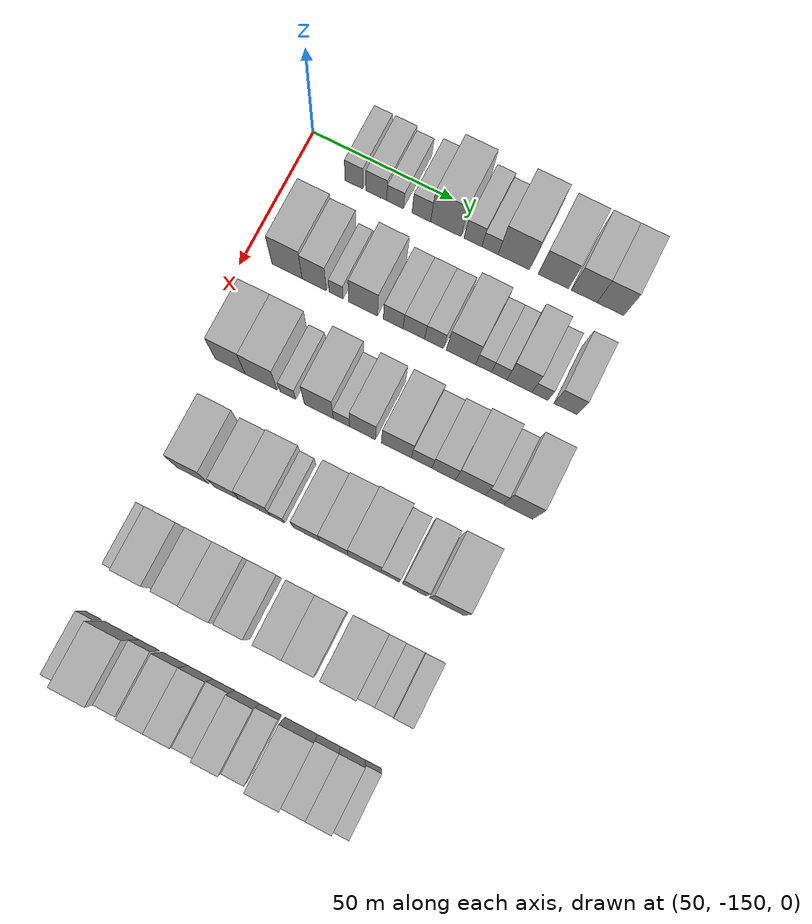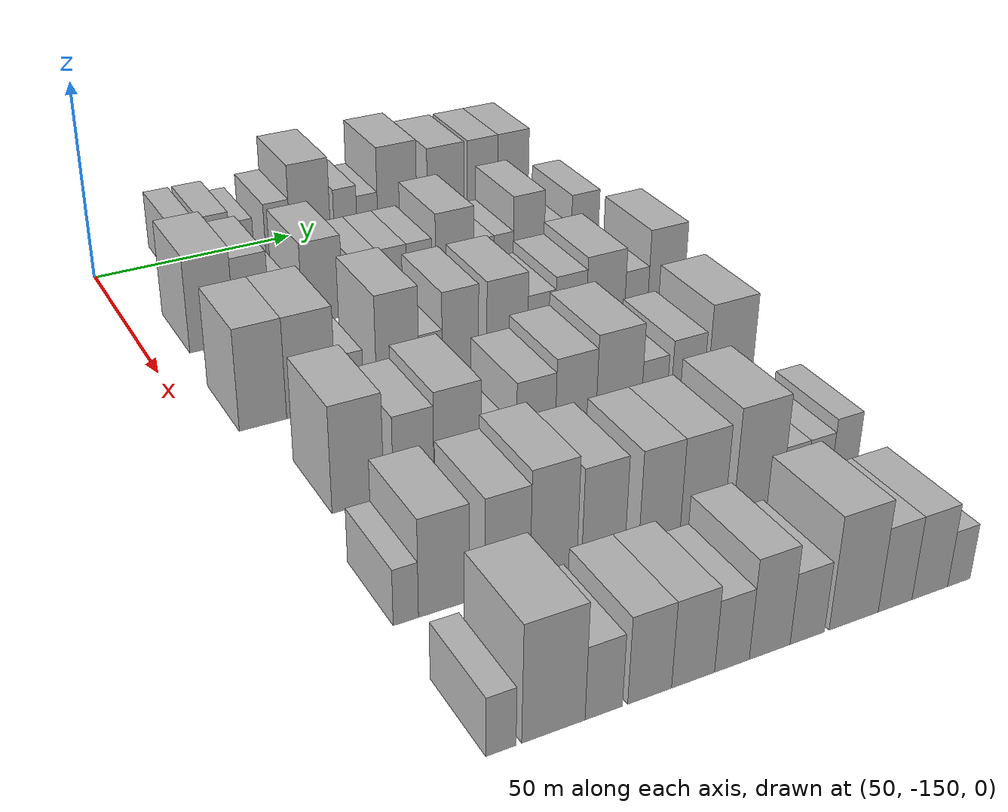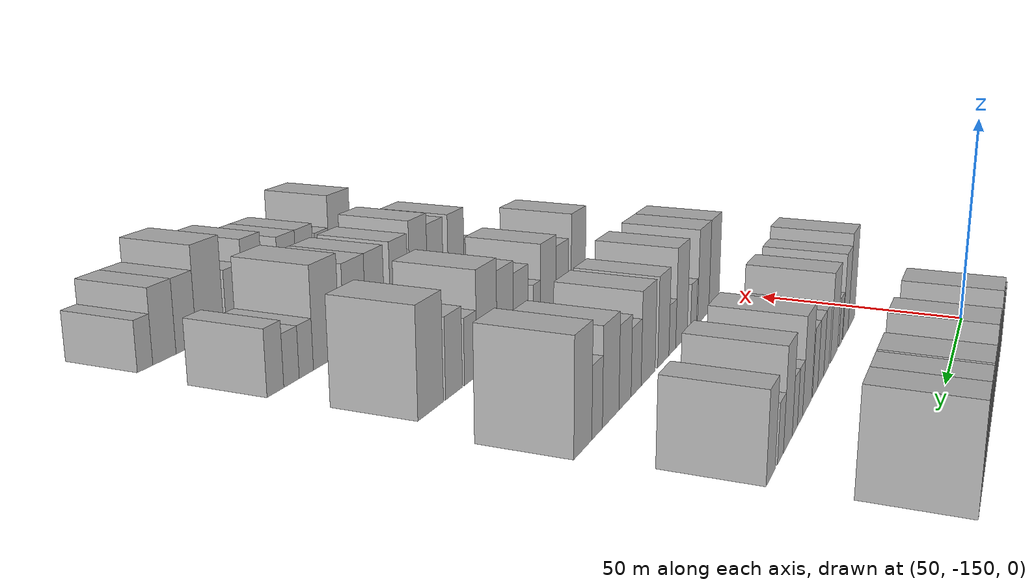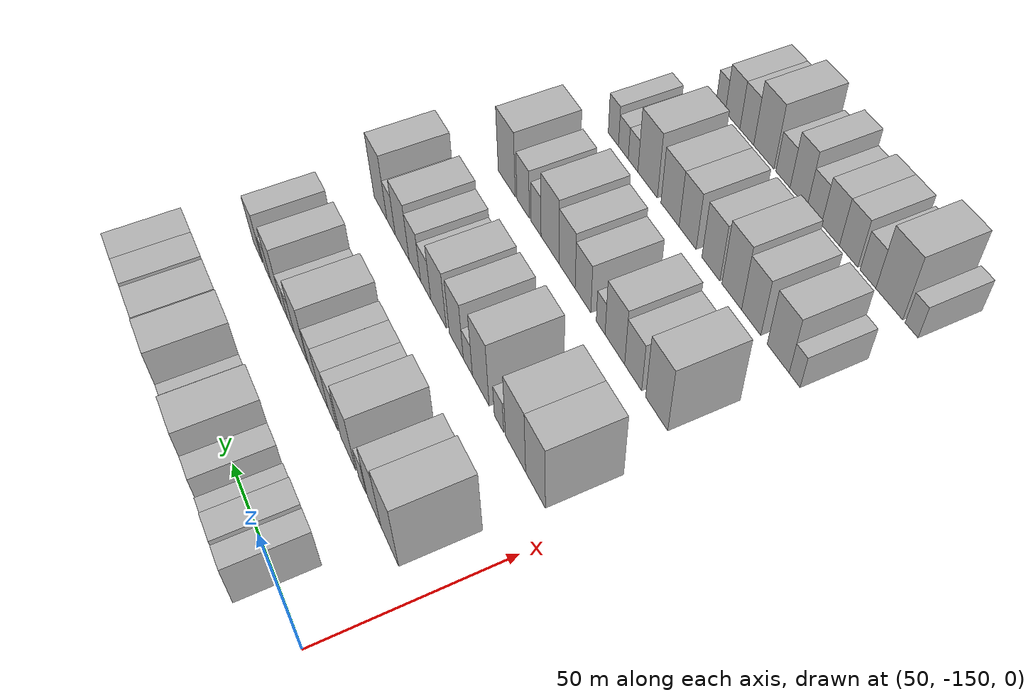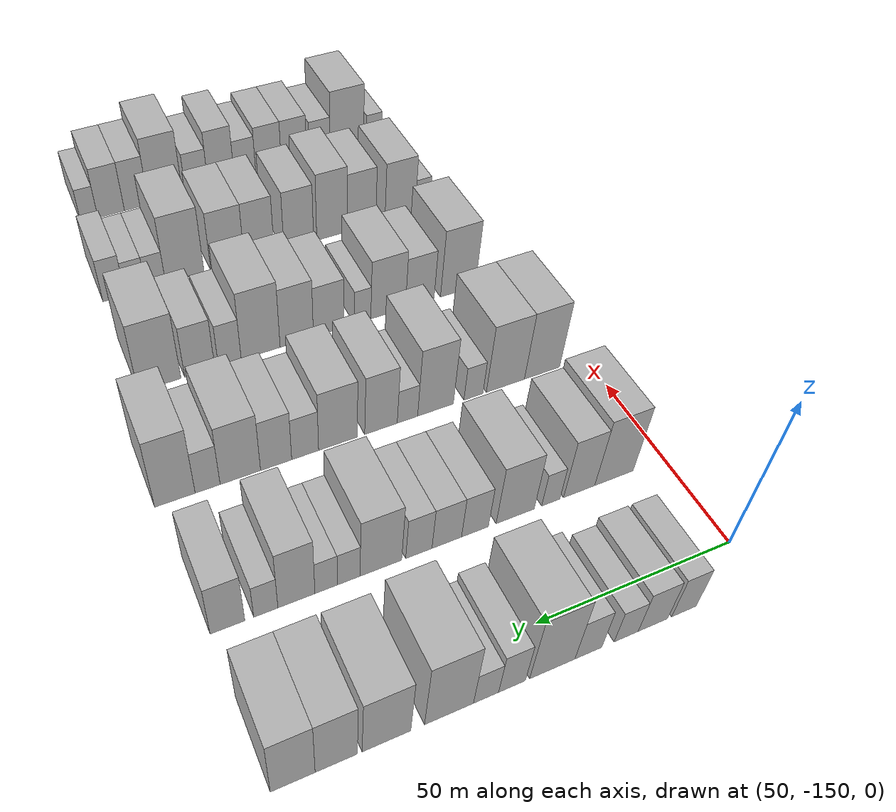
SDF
<sdf version="1.6">
 <world name="default">
  <model name="building_51">
   <static>1</static>
   <pose>50.0000 -130.3508 0 0.000000 0.000000 0.000000</pose>
   <link name="link">
    <pose>0 0 7.50 0 0 0</pose>
    <collision name="collision"><geometry><box><size>20.0000 6.3172 15.0000</size></box></geometry></collision>
    <visual name="visual">
     <cast_shadows>0</cast_shadows>
     <geometry><box><size>20.0000 6.3172 15.0000</size></box></geometry>
     <material>
      <script>
       <uri>model://HANNAS_wall/materials/scripts</uri>
       <uri>model://HANNAS_wall/materials/textures</uri>
       <name>vrc/HANNAS_wall</name>
      </script>
     </material>
    </visual>
   </link>
  </model>
  <model name="building_52">
   <static>1</static>
   <pose>50.0000 -122.4720 0 0.000000 0.000000 0.000000</pose>
   <link name="link">
    <pose>0 0 7.50 0 0 0</pose>
    <collision name="collision"><geometry><box><size>20.0000 7.4404 15.0000</size></box></geometry></collision>
    <visual name="visual">
     <cast_shadows>0</cast_shadows>
     <geometry><box><size>20.0000 7.4404 15.0000</size></box></geometry>
     <material>
      <script>
       <uri>model://HANNAS_wall/materials/scripts</uri>
       <uri>model://HANNAS_wall/materials/textures</uri>
       <name>vrc/HANNAS_wall</name>
      </script>
     </material>
    </visual>
   </link>
  </model>
  <model name="building_53">
   <static>1</static>
   <pose>50.0000 -115.7712 0 0.000000 0.000000 0.000000</pose>
   <link name="link">
    <pose>0 0 6.00 0 0 0</pose>
    <collision name="collision"><geometry><box><size>20.0000 5.9613 12.0000</size></box></geometry></collision>
    <visual name="visual">
     <cast_shadows>0</cast_shadows>
     <geometry><box><size>20.0000 5.9613 12.0000</size></box></geometry>
     <material>
      <script>
       <uri>model://HANNAS_wall/materials/scripts</uri>
       <uri>model://HANNAS_wall/materials/textures</uri>
       <name>vrc/HANNAS_wall</name>
      </script>
     </material>
    </visual>
   </link>
  </model>
  <model name="building_54">
   <static>1</static>
   <pose>50.0000 -106.5245 0 0.000000 0.000000 0.000000</pose>
   <link name="link">
    <pose>0 0 7.50 0 0 0</pose>
    <collision name="collision"><geometry><box><size>20.0000 6.5322 15.0000</size></box></geometry></collision>
    <visual name="visual">
     <cast_shadows>0</cast_shadows>
     <geometry><box><size>20.0000 6.5322 15.0000</size></box></geometry>
     <material>
      <script>
       <uri>model://HANNAS_wall/materials/scripts</uri>
       <uri>model://HANNAS_wall/materials/textures</uri>
       <name>vrc/HANNAS_wall</name>
      </script>
     </material>
    </visual>
   </link>
  </model>
  <model name="building_55">
   <static>1</static>
   <pose>50.0000 -97.8886 0 0.000000 0.000000 0.000000</pose>
   <link name="link">
    <pose>0 0 12.00 0 0 0</pose>
    <collision name="collision"><geometry><box><size>20.0000 10.7394 24.0000</size></box></geometry></collision>
    <visual name="visual">
     <cast_shadows>0</cast_shadows>
     <geometry><box><size>20.0000 10.7394 24.0000</size></box></geometry>
     <material>
      <script>
       <uri>model://HANNAS_wall/materials/scripts</uri>
       <uri>model://HANNAS_wall/materials/textures</uri>
       <name>vrc/HANNAS_wall</name>
      </script>
     </material>
    </visual>
   </link>
  </model>
  <model name="building_56">
   <static>1</static>
   <pose>50.0000 -88.4164 0 0.000000 0.000000 0.000000</pose>
   <link name="link">
    <pose>0 0 7.50 0 0 0</pose>
    <collision name="collision"><geometry><box><size>20.0000 6.2050 15.0000</size></box></geometry></collision>
    <visual name="visual">
     <cast_shadows>0</cast_shadows>
     <geometry><box><size>20.0000 6.2050 15.0000</size></box></geometry>
     <material>
      <script>
       <uri>model://HANNAS_wall/materials/scripts</uri>
       <uri>model://HANNAS_wall/materials/textures</uri>
       <name>vrc/HANNAS_wall</name>
      </script>
     </material>
    </visual>
   </link>
  </model>
  <model name="building_57">
   <static>1</static>
   <pose>50.0000 -82.4625 0 0.000000 0.000000 0.000000</pose>
   <link name="link">
    <pose>0 0 6.00 0 0 0</pose>
    <collision name="collision"><geometry><box><size>20.0000 5.7027 12.0000</size></box></geometry></collision>
    <visual name="visual">
     <cast_shadows>0</cast_shadows>
     <geometry><box><size>20.0000 5.7027 12.0000</size></box></geometry>
     <material>
      <script>
       <uri>model://HANNAS_wall/materials/scripts</uri>
       <uri>model://HANNAS_wall/materials/textures</uri>
       <name>vrc/HANNAS_wall</name>
      </script>
     </material>
    </visual>
   </link>
  </model>
  <model name="building_58">
   <static>1</static>
   <pose>50.0000 -74.1532 0 0.000000 0.000000 0.000000</pose>
   <link name="link">
    <pose>0 0 12.00 0 0 0</pose>
    <collision name="collision"><geometry><box><size>20.0000 10.9160 24.0000</size></box></geometry></collision>
    <visual name="visual">
     <cast_shadows>0</cast_shadows>
     <geometry><box><size>20.0000 10.9160 24.0000</size></box></geometry>
     <material>
      <script>
       <uri>model://HANNAS_wall/materials/scripts</uri>
       <uri>model://HANNAS_wall/materials/textures</uri>
       <name>vrc/HANNAS_wall</name>
      </script>
     </material>
    </visual>
   </link>
  </model>
  <model name="building_59">
   <static>1</static>
   <pose>50.0000 -60.4686 0 0.000000 0.000000 0.000000</pose>
   <link name="link">
    <pose>0 0 10.50 0 0 0</pose>
    <collision name="collision"><geometry><box><size>20.0000 10.4533 21.0000</size></box></geometry></collision>
    <visual name="visual">
     <cast_shadows>0</cast_shadows>
     <geometry><box><size>20.0000 10.4533 21.0000</size></box></geometry>
     <material>
      <script>
       <uri>model://HANNAS_wall/materials/scripts</uri>
       <uri>model://HANNAS_wall/materials/textures</uri>
       <name>vrc/HANNAS_wall</name>
      </script>
     </material>
    </visual>
   </link>
  </model>
  <model name="building_60">
   <static>1</static>
   <pose>50.0000 -49.8352 0 0.000000 0.000000 0.000000</pose>
   <link name="link">
    <pose>0 0 10.50 0 0 0</pose>
    <collision name="collision"><geometry><box><size>20.0000 8.8134 21.0000</size></box></geometry></collision>
    <visual name="visual">
     <cast_shadows>0</cast_shadows>
     <geometry><box><size>20.0000 8.8134 21.0000</size></box></geometry>
     <material>
      <script>
       <uri>model://HANNAS_wall/materials/scripts</uri>
       <uri>model://HANNAS_wall/materials/textures</uri>
       <name>vrc/HANNAS_wall</name>
      </script>
     </material>
    </visual>
   </link>
  </model>
  <model name="building_61">
   <static>1</static>
   <pose>50.0000 -40.8537 0 0.000000 0.000000 0.000000</pose>
   <link name="link">
    <pose>0 0 10.50 0 0 0</pose>
    <collision name="collision"><geometry><box><size>20.0000 9.1495 21.0000</size></box></geometry></collision>
    <visual name="visual">
     <cast_shadows>0</cast_shadows>
     <geometry><box><size>20.0000 9.1495 21.0000</size></box></geometry>
     <material>
      <script>
       <uri>model://HANNAS_wall/materials/scripts</uri>
       <uri>model://HANNAS_wall/materials/textures</uri>
       <name>vrc/HANNAS_wall</name>
      </script>
     </material>
    </visual>
   </link>
  </model>
  <model name="building_176">
   <static>1</static>
   <pose>85.0000 -135.7676 0 0.000000 0.000000 0.000000</pose>
   <link name="link">
    <pose>0 0 12.00 0 0 0</pose>
    <collision name="collision"><geometry><box><size>20.0000 10.6672 24.0000</size></box></geometry></collision>
    <visual name="visual">
     <cast_shadows>0</cast_shadows>
     <geometry><box><size>20.0000 10.6672 24.0000</size></box></geometry>
     <material>
      <script>
       <uri>model://HANNAS_wall/materials/scripts</uri>
       <uri>model://HANNAS_wall/materials/textures</uri>
       <name>vrc/HANNAS_wall</name>
      </script>
     </material>
    </visual>
   </link>
  </model>
  <model name="building_177">
   <static>1</static>
   <pose>85.0000 -126.1915 0 0.000000 0.000000 0.000000</pose>
   <link name="link">
    <pose>0 0 10.50 0 0 0</pose>
    <collision name="collision"><geometry><box><size>20.0000 8.4851 21.0000</size></box></geometry></collision>
    <visual name="visual">
     <cast_shadows>0</cast_shadows>
     <geometry><box><size>20.0000 8.4851 21.0000</size></box></geometry>
     <material>
      <script>
       <uri>model://HANNAS_wall/materials/scripts</uri>
       <uri>model://HANNAS_wall/materials/textures</uri>
       <name>vrc/HANNAS_wall</name>
      </script>
     </material>
    </visual>
   </link>
  </model>
  <model name="building_178">
   <static>1</static>
   <pose>85.0000 -118.5254 0 0.000000 0.000000 0.000000</pose>
   <link name="link">
    <pose>0 0 6.00 0 0 0</pose>
    <collision name="collision"><geometry><box><size>20.0000 4.8470 12.0000</size></box></geometry></collision>
    <visual name="visual">
     <cast_shadows>0</cast_shadows>
     <geometry><box><size>20.0000 4.8470 12.0000</size></box></geometry>
     <material>
      <script>
       <uri>model://HANNAS_wall/materials/scripts</uri>
       <uri>model://HANNAS_wall/materials/textures</uri>
       <name>vrc/HANNAS_wall</name>
      </script>
     </material>
    </visual>
   </link>
  </model>
  <model name="building_179">
   <static>1</static>
   <pose>85.0000 -109.1115 0 0.000000 0.000000 0.000000</pose>
   <link name="link">
    <pose>0 0 10.50 0 0 0</pose>
    <collision name="collision"><geometry><box><size>20.0000 9.9807 21.0000</size></box></geometry></collision>
    <visual name="visual">
     <cast_shadows>0</cast_shadows>
     <geometry><box><size>20.0000 9.9807 21.0000</size></box></geometry>
     <material>
      <script>
       <uri>model://HANNAS_wall/materials/scripts</uri>
       <uri>model://HANNAS_wall/materials/textures</uri>
       <name>vrc/HANNAS_wall</name>
      </script>
     </material>
    </visual>
   </link>
  </model>
  <model name="building_180">
   <static>1</static>
   <pose>85.0000 -98.6884 0 0.000000 0.000000 0.000000</pose>
   <link name="link">
    <pose>0 0 7.50 0 0 0</pose>
    <collision name="collision"><geometry><box><size>20.0000 6.8655 15.0000</size></box></geometry></collision>
    <visual name="visual">
     <cast_shadows>0</cast_shadows>
     <geometry><box><size>20.0000 6.8655 15.0000</size></box></geometry>
     <material>
      <script>
       <uri>model://HANNAS_wall/materials/scripts</uri>
       <uri>model://HANNAS_wall/materials/textures</uri>
       <name>vrc/HANNAS_wall</name>
      </script>
     </material>
    </visual>
   </link>
  </model>
  <model name="building_181">
   <static>1</static>
   <pose>85.0000 -91.5393 0 0.000000 0.000000 0.000000</pose>
   <link name="link">
    <pose>0 0 7.50 0 0 0</pose>
    <collision name="collision"><geometry><box><size>20.0000 7.4326 15.0000</size></box></geometry></collision>
    <visual name="visual">
     <cast_shadows>0</cast_shadows>
     <geometry><box><size>20.0000 7.4326 15.0000</size></box></geometry>
     <material>
      <script>
       <uri>model://HANNAS_wall/materials/scripts</uri>
       <uri>model://HANNAS_wall/materials/textures</uri>
       <name>vrc/HANNAS_wall</name>
      </script>
     </material>
    </visual>
   </link>
  </model>
  <model name="building_182">
   <static>1</static>
   <pose>85.0000 -84.5740 0 0.000000 0.000000 0.000000</pose>
   <link name="link">
    <pose>0 0 7.50 0 0 0</pose>
    <collision name="collision"><geometry><box><size>20.0000 6.4979 15.0000</size></box></geometry></collision>
    <visual name="visual">
     <cast_shadows>0</cast_shadows>
     <geometry><box><size>20.0000 6.4979 15.0000</size></box></geometry>
     <material>
      <script>
       <uri>model://HANNAS_wall/materials/scripts</uri>
       <uri>model://HANNAS_wall/materials/textures</uri>
       <name>vrc/HANNAS_wall</name>
      </script>
     </material>
    </visual>
   </link>
  </model>
  <model name="building_183">
   <static>1</static>
   <pose>85.0000 -75.2834 0 0.000000 0.000000 0.000000</pose>
   <link name="link">
    <pose>0 0 10.50 0 0 0</pose>
    <collision name="collision"><geometry><box><size>20.0000 10.0834 21.0000</size></box></geometry></collision>
    <visual name="visual">
     <cast_shadows>0</cast_shadows>
     <geometry><box><size>20.0000 10.0834 21.0000</size></box></geometry>
     <material>
      <script>
       <uri>model://HANNAS_wall/materials/scripts</uri>
       <uri>model://HANNAS_wall/materials/textures</uri>
       <name>vrc/HANNAS_wall</name>
      </script>
     </material>
    </visual>
   </link>
  </model>
  <model name="building_184">
   <static>1</static>
   <pose>85.0000 -67.5620 0 0.000000 0.000000 0.000000</pose>
   <link name="link">
    <pose>0 0 6.00 0 0 0</pose>
    <collision name="collision"><geometry><box><size>20.0000 5.3594 12.0000</size></box></geometry></collision>
    <visual name="visual">
     <cast_shadows>0</cast_shadows>
     <geometry><box><size>20.0000 5.3594 12.0000</size></box></geometry>
     <material>
      <script>
       <uri>model://HANNAS_wall/materials/scripts</uri>
       <uri>model://HANNAS_wall/materials/textures</uri>
       <name>vrc/HANNAS_wall</name>
      </script>
     </material>
    </visual>
   </link>
  </model>
  <model name="building_185">
   <static>1</static>
   <pose>85.0000 -62.2401 0 0.000000 0.000000 0.000000</pose>
   <link name="link">
    <pose>0 0 6.00 0 0 0</pose>
    <collision name="collision"><geometry><box><size>20.0000 5.2845 12.0000</size></box></geometry></collision>
    <visual name="visual">
     <cast_shadows>0</cast_shadows>
     <geometry><box><size>20.0000 5.2845 12.0000</size></box></geometry>
     <material>
      <script>
       <uri>model://HANNAS_wall/materials/scripts</uri>
       <uri>model://HANNAS_wall/materials/textures</uri>
       <name>vrc/HANNAS_wall</name>
      </script>
     </material>
    </visual>
   </link>
  </model>
  <model name="building_186">
   <static>1</static>
   <pose>85.0000 -55.3357 0 0.000000 0.000000 0.000000</pose>
   <link name="link">
    <pose>0 0 10.50 0 0 0</pose>
    <collision name="collision"><geometry><box><size>20.0000 8.5244 21.0000</size></box></geometry></collision>
    <visual name="visual">
     <cast_shadows>0</cast_shadows>
     <geometry><box><size>20.0000 8.5244 21.0000</size></box></geometry>
     <material>
      <script>
       <uri>model://HANNAS_wall/materials/scripts</uri>
       <uri>model://HANNAS_wall/materials/textures</uri>
       <name>vrc/HANNAS_wall</name>
      </script>
     </material>
    </visual>
   </link>
  </model>
  <model name="building_187">
   <static>1</static>
   <pose>85.0000 -48.3284 0 0.000000 0.000000 0.000000</pose>
   <link name="link">
    <pose>0 0 6.00 0 0 0</pose>
    <collision name="collision"><geometry><box><size>20.0000 5.4902 12.0000</size></box></geometry></collision>
    <visual name="visual">
     <cast_shadows>0</cast_shadows>
     <geometry><box><size>20.0000 5.4902 12.0000</size></box></geometry>
     <material>
      <script>
       <uri>model://HANNAS_wall/materials/scripts</uri>
       <uri>model://HANNAS_wall/materials/textures</uri>
       <name>vrc/HANNAS_wall</name>
      </script>
     </material>
    </visual>
   </link>
  </model>
  <model name="building_188">
   <static>1</static>
   <pose>85.0000 -39.7188 0 0.000000 0.000000 0.000000</pose>
   <link name="link">
    <pose>0 0 9.00 0 0 0</pose>
    <collision name="collision"><geometry><box><size>20.0000 7.7289 18.0000</size></box></geometry></collision>
    <visual name="visual">
     <cast_shadows>0</cast_shadows>
     <geometry><box><size>20.0000 7.7289 18.0000</size></box></geometry>
     <material>
      <script>
       <uri>model://HANNAS_wall/materials/scripts</uri>
       <uri>model://HANNAS_wall/materials/textures</uri>
       <name>vrc/HANNAS_wall</name>
      </script>
     </material>
    </visual>
   </link>
  </model>
  <model name="building_296">
   <static>1</static>
   <pose>120.0000 -136.9587 0 0.000000 0.000000 0.000000</pose>
   <link name="link">
    <pose>0 0 12.00 0 0 0</pose>
    <collision name="collision"><geometry><box><size>20.0000 10.4155 24.0000</size></box></geometry></collision>
    <visual name="visual">
     <cast_shadows>0</cast_shadows>
     <geometry><box><size>20.0000 10.4155 24.0000</size></box></geometry>
     <material>
      <script>
       <uri>model://HANNAS_wall/materials/scripts</uri>
       <uri>model://HANNAS_wall/materials/textures</uri>
       <name>vrc/HANNAS_wall</name>
      </script>
     </material>
    </visual>
   </link>
  </model>
  <model name="building_297">
   <static>1</static>
   <pose>120.0000 -126.2080 0 0.000000 0.000000 0.000000</pose>
   <link name="link">
    <pose>0 0 12.00 0 0 0</pose>
    <collision name="collision"><geometry><box><size>20.0000 11.0860 24.0000</size></box></geometry></collision>
    <visual name="visual">
     <cast_shadows>0</cast_shadows>
     <geometry><box><size>20.0000 11.0860 24.0000</size></box></geometry>
     <material>
      <script>
       <uri>model://HANNAS_wall/materials/scripts</uri>
       <uri>model://HANNAS_wall/materials/textures</uri>
       <name>vrc/HANNAS_wall</name>
      </script>
     </material>
    </visual>
   </link>
  </model>
  <model name="building_298">
   <static>1</static>
   <pose>120.0000 -116.9693 0 0.000000 0.000000 0.000000</pose>
   <link name="link">
    <pose>0 0 6.00 0 0 0</pose>
    <collision name="collision"><geometry><box><size>20.0000 5.3913 12.0000</size></box></geometry></collision>
    <visual name="visual">
     <cast_shadows>0</cast_shadows>
     <geometry><box><size>20.0000 5.3913 12.0000</size></box></geometry>
     <material>
      <script>
       <uri>model://HANNAS_wall/materials/scripts</uri>
       <uri>model://HANNAS_wall/materials/textures</uri>
       <name>vrc/HANNAS_wall</name>
      </script>
     </material>
    </visual>
   </link>
  </model>
  <model name="building_299">
   <static>1</static>
   <pose>120.0000 -106.2998 0 0.000000 0.000000 0.000000</pose>
   <link name="link">
    <pose>0 0 12.00 0 0 0</pose>
    <collision name="collision"><geometry><box><size>20.0000 9.9476 24.0000</size></box></geometry></collision>
    <visual name="visual">
     <cast_shadows>0</cast_shadows>
     <geometry><box><size>20.0000 9.9476 24.0000</size></box></geometry>
     <material>
      <script>
       <uri>model://HANNAS_wall/materials/scripts</uri>
       <uri>model://HANNAS_wall/materials/textures</uri>
       <name>vrc/HANNAS_wall</name>
      </script>
     </material>
    </visual>
   </link>
  </model>
  <model name="building_300">
   <static>1</static>
   <pose>120.0000 -98.5331 0 0.000000 0.000000 0.000000</pose>
   <link name="link">
    <pose>0 0 6.00 0 0 0</pose>
    <collision name="collision"><geometry><box><size>20.0000 5.5858 12.0000</size></box></geometry></collision>
    <visual name="visual">
     <cast_shadows>0</cast_shadows>
     <geometry><box><size>20.0000 5.5858 12.0000</size></box></geometry>
     <material>
      <script>
       <uri>model://HANNAS_wall/materials/scripts</uri>
       <uri>model://HANNAS_wall/materials/textures</uri>
       <name>vrc/HANNAS_wall</name>
      </script>
     </material>
    </visual>
   </link>
  </model>
  <model name="building_301">
   <static>1</static>
   <pose>120.0000 -91.3434 0 0.000000 0.000000 0.000000</pose>
   <link name="link">
    <pose>0 0 10.50 0 0 0</pose>
    <collision name="collision"><geometry><box><size>20.0000 8.7936 21.0000</size></box></geometry></collision>
    <visual name="visual">
     <cast_shadows>0</cast_shadows>
     <geometry><box><size>20.0000 8.7936 21.0000</size></box></geometry>
     <material>
      <script>
       <uri>model://HANNAS_wall/materials/scripts</uri>
       <uri>model://HANNAS_wall/materials/textures</uri>
       <name>vrc/HANNAS_wall</name>
      </script>
     </material>
    </visual>
   </link>
  </model>
  <model name="building_302">
   <static>1</static>
   <pose>120.0000 -79.8676 0 0.000000 0.000000 0.000000</pose>
   <link name="link">
    <pose>0 0 10.50 0 0 0</pose>
    <collision name="collision"><geometry><box><size>20.0000 10.1580 21.0000</size></box></geometry></collision>
    <visual name="visual">
     <cast_shadows>0</cast_shadows>
     <geometry><box><size>20.0000 10.1580 21.0000</size></box></geometry>
     <material>
      <script>
       <uri>model://HANNAS_wall/materials/scripts</uri>
       <uri>model://HANNAS_wall/materials/textures</uri>
       <name>vrc/HANNAS_wall</name>
      </script>
     </material>
    </visual>
   </link>
  </model>
  <model name="building_303">
   <static>1</static>
   <pose>120.0000 -71.3106 0 0.000000 0.000000 0.000000</pose>
   <link name="link">
    <pose>0 0 7.50 0 0 0</pose>
    <collision name="collision"><geometry><box><size>20.0000 6.9560 15.0000</size></box></geometry></collision>
    <visual name="visual">
     <cast_shadows>0</cast_shadows>
     <geometry><box><size>20.0000 6.9560 15.0000</size></box></geometry>
     <material>
      <script>
       <uri>model://HANNAS_wall/materials/scripts</uri>
       <uri>model://HANNAS_wall/materials/textures</uri>
       <name>vrc/HANNAS_wall</name>
      </script>
     </material>
    </visual>
   </link>
  </model>
  <model name="building_304">
   <static>1</static>
   <pose>120.0000 -63.8714 0 0.000000 0.000000 0.000000</pose>
   <link name="link">
    <pose>0 0 9.00 0 0 0</pose>
    <collision name="collision"><geometry><box><size>20.0000 7.9224 18.0000</size></box></geometry></collision>
    <visual name="visual">
     <cast_shadows>0</cast_shadows>
     <geometry><box><size>20.0000 7.9224 18.0000</size></box></geometry>
     <material>
      <script>
       <uri>model://HANNAS_wall/materials/scripts</uri>
       <uri>model://HANNAS_wall/materials/textures</uri>
       <name>vrc/HANNAS_wall</name>
      </script>
     </material>
    </visual>
   </link>
  </model>
  <model name="building_305">
   <static>1</static>
   <pose>120.0000 -54.8686 0 0.000000 0.000000 0.000000</pose>
   <link name="link">
    <pose>0 0 10.50 0 0 0</pose>
    <collision name="collision"><geometry><box><size>20.0000 10.0833 21.0000</size></box></geometry></collision>
    <visual name="visual">
     <cast_shadows>0</cast_shadows>
     <geometry><box><size>20.0000 10.0833 21.0000</size></box></geometry>
     <material>
      <script>
       <uri>model://HANNAS_wall/materials/scripts</uri>
       <uri>model://HANNAS_wall/materials/textures</uri>
       <name>vrc/HANNAS_wall</name>
      </script>
     </material>
    </visual>
   </link>
  </model>
  <model name="building_306">
   <static>1</static>
   <pose>120.0000 -46.7662 0 0.000000 0.000000 0.000000</pose>
   <link name="link">
    <pose>0 0 7.50 0 0 0</pose>
    <collision name="collision"><geometry><box><size>20.0000 6.1215 15.0000</size></box></geometry></collision>
    <visual name="visual">
     <cast_shadows>0</cast_shadows>
     <geometry><box><size>20.0000 6.1215 15.0000</size></box></geometry>
     <material>
      <script>
       <uri>model://HANNAS_wall/materials/scripts</uri>
       <uri>model://HANNAS_wall/materials/textures</uri>
       <name>vrc/HANNAS_wall</name>
      </script>
     </material>
    </visual>
   </link>
  </model>
  <model name="building_307">
   <static>1</static>
   <pose>120.0000 -38.8166 0 0.000000 0.000000 0.000000</pose>
   <link name="link">
    <pose>0 0 12.00 0 0 0</pose>
    <collision name="collision"><geometry><box><size>20.0000 9.7776 24.0000</size></box></geometry></collision>
    <visual name="visual">
     <cast_shadows>0</cast_shadows>
     <geometry><box><size>20.0000 9.7776 24.0000</size></box></geometry>
     <material>
      <script>
       <uri>model://HANNAS_wall/materials/scripts</uri>
       <uri>model://HANNAS_wall/materials/textures</uri>
       <name>vrc/HANNAS_wall</name>
      </script>
     </material>
    </visual>
   </link>
  </model>
  <model name="building_426">
   <static>1</static>
   <pose>155.0000 -130.8153 0 0.000000 0.000000 0.000000</pose>
   <link name="link">
    <pose>0 0 12.00 0 0 0</pose>
    <collision name="collision"><geometry><box><size>20.0000 10.8193 24.0000</size></box></geometry></collision>
    <visual name="visual">
     <cast_shadows>0</cast_shadows>
     <geometry><box><size>20.0000 10.8193 24.0000</size></box></geometry>
     <material>
      <script>
       <uri>model://HANNAS_wall/materials/scripts</uri>
       <uri>model://HANNAS_wall/materials/textures</uri>
       <name>vrc/HANNAS_wall</name>
      </script>
     </material>
    </visual>
   </link>
  </model>
  <model name="building_427">
   <static>1</static>
   <pose>155.0000 -119.0534 0 0.000000 0.000000 0.000000</pose>
   <link name="link">
    <pose>0 0 9.00 0 0 0</pose>
    <collision name="collision"><geometry><box><size>20.0000 8.7045 18.0000</size></box></geometry></collision>
    <visual name="visual">
     <cast_shadows>0</cast_shadows>
     <geometry><box><size>20.0000 8.7045 18.0000</size></box></geometry>
     <material>
      <script>
       <uri>model://HANNAS_wall/materials/scripts</uri>
       <uri>model://HANNAS_wall/materials/textures</uri>
       <name>vrc/HANNAS_wall</name>
      </script>
     </material>
    </visual>
   </link>
  </model>
  <model name="building_428">
   <static>1</static>
   <pose>155.0000 -109.5148 0 0.000000 0.000000 0.000000</pose>
   <link name="link">
    <pose>0 0 10.50 0 0 0</pose>
    <collision name="collision"><geometry><box><size>20.0000 10.3727 21.0000</size></box></geometry></collision>
    <visual name="visual">
     <cast_shadows>0</cast_shadows>
     <geometry><box><size>20.0000 10.3727 21.0000</size></box></geometry>
     <material>
      <script>
       <uri>model://HANNAS_wall/materials/scripts</uri>
       <uri>model://HANNAS_wall/materials/textures</uri>
       <name>vrc/HANNAS_wall</name>
      </script>
     </material>
    </visual>
   </link>
  </model>
  <model name="building_429">
   <static>1</static>
   <pose>155.0000 -101.9180 0 0.000000 0.000000 0.000000</pose>
   <link name="link">
    <pose>0 0 6.00 0 0 0</pose>
    <collision name="collision"><geometry><box><size>20.0000 4.8208 12.0000</size></box></geometry></collision>
    <visual name="visual">
     <cast_shadows>0</cast_shadows>
     <geometry><box><size>20.0000 4.8208 12.0000</size></box></geometry>
     <material>
      <script>
       <uri>model://HANNAS_wall/materials/scripts</uri>
       <uri>model://HANNAS_wall/materials/textures</uri>
       <name>vrc/HANNAS_wall</name>
      </script>
     </material>
    </visual>
   </link>
  </model>
  <model name="building_430">
   <static>1</static>
   <pose>155.0000 -92.0634 0 0.000000 0.000000 0.000000</pose>
   <link name="link">
    <pose>0 0 9.00 0 0 0</pose>
    <collision name="collision"><geometry><box><size>20.0000 8.8884 18.0000</size></box></geometry></collision>
    <visual name="visual">
     <cast_shadows>0</cast_shadows>
     <geometry><box><size>20.0000 8.8884 18.0000</size></box></geometry>
     <material>
      <script>
       <uri>model://HANNAS_wall/materials/scripts</uri>
       <uri>model://HANNAS_wall/materials/textures</uri>
       <name>vrc/HANNAS_wall</name>
      </script>
     </material>
    </visual>
   </link>
  </model>
  <model name="building_431">
   <static>1</static>
   <pose>155.0000 -82.8939 0 0.000000 0.000000 0.000000</pose>
   <link name="link">
    <pose>0 0 10.50 0 0 0</pose>
    <collision name="collision"><geometry><box><size>20.0000 9.4506 21.0000</size></box></geometry></collision>
    <visual name="visual">
     <cast_shadows>0</cast_shadows>
     <geometry><box><size>20.0000 9.4506 21.0000</size></box></geometry>
     <material>
      <script>
       <uri>model://HANNAS_wall/materials/scripts</uri>
       <uri>model://HANNAS_wall/materials/textures</uri>
       <name>vrc/HANNAS_wall</name>
      </script>
     </material>
    </visual>
   </link>
  </model>
  <model name="building_432">
   <static>1</static>
   <pose>155.0000 -72.7518 0 0.000000 0.000000 0.000000</pose>
   <link name="link">
    <pose>0 0 12.00 0 0 0</pose>
    <collision name="collision"><geometry><box><size>20.0000 10.8337 24.0000</size></box></geometry></collision>
    <visual name="visual">
     <cast_shadows>0</cast_shadows>
     <geometry><box><size>20.0000 10.8337 24.0000</size></box></geometry>
     <material>
      <script>
       <uri>model://HANNAS_wall/materials/scripts</uri>
       <uri>model://HANNAS_wall/materials/textures</uri>
       <name>vrc/HANNAS_wall</name>
      </script>
     </material>
    </visual>
   </link>
  </model>
  <model name="building_433">
   <static>1</static>
   <pose>155.0000 -64.2150 0 0.000000 0.000000 0.000000</pose>
   <link name="link">
    <pose>0 0 7.50 0 0 0</pose>
    <collision name="collision"><geometry><box><size>20.0000 6.2399 15.0000</size></box></geometry></collision>
    <visual name="visual">
     <cast_shadows>0</cast_shadows>
     <geometry><box><size>20.0000 6.2399 15.0000</size></box></geometry>
     <material>
      <script>
       <uri>model://HANNAS_wall/materials/scripts</uri>
       <uri>model://HANNAS_wall/materials/textures</uri>
       <name>vrc/HANNAS_wall</name>
      </script>
     </material>
    </visual>
   </link>
  </model>
  <model name="building_434">
   <static>1</static>
   <pose>155.0000 -56.0579 0 0.000000 0.000000 0.000000</pose>
   <link name="link">
    <pose>0 0 9.00 0 0 0</pose>
    <collision name="collision"><geometry><box><size>20.0000 8.0742 18.0000</size></box></geometry></collision>
    <visual name="visual">
     <cast_shadows>0</cast_shadows>
     <geometry><box><size>20.0000 8.0742 18.0000</size></box></geometry>
     <material>
      <script>
       <uri>model://HANNAS_wall/materials/scripts</uri>
       <uri>model://HANNAS_wall/materials/textures</uri>
       <name>vrc/HANNAS_wall</name>
      </script>
     </material>
    </visual>
   </link>
  </model>
  <model name="building_435">
   <static>1</static>
   <pose>155.0000 -45.3589 0 0.000000 0.000000 0.000000</pose>
   <link name="link">
    <pose>0 0 12.00 0 0 0</pose>
    <collision name="collision"><geometry><box><size>20.0000 11.3237 24.0000</size></box></geometry></collision>
    <visual name="visual">
     <cast_shadows>0</cast_shadows>
     <geometry><box><size>20.0000 11.3237 24.0000</size></box></geometry>
     <material>
      <script>
       <uri>model://HANNAS_wall/materials/scripts</uri>
       <uri>model://HANNAS_wall/materials/textures</uri>
       <name>vrc/HANNAS_wall</name>
      </script>
     </material>
    </visual>
   </link>
  </model>
  <model name="building_552">
   <static>1</static>
   <pose>190.0000 -137.0495 0 0.000000 0.000000 0.000000</pose>
   <link name="link">
    <pose>0 0 6.00 0 0 0</pose>
    <collision name="collision"><geometry><box><size>20.0000 4.8321 12.0000</size></box></geometry></collision>
    <visual name="visual">
     <cast_shadows>0</cast_shadows>
     <geometry><box><size>20.0000 4.8321 12.0000</size></box></geometry>
     <material>
      <script>
       <uri>model://HANNAS_wall/materials/scripts</uri>
       <uri>model://HANNAS_wall/materials/textures</uri>
       <name>vrc/HANNAS_wall</name>
      </script>
     </material>
    </visual>
   </link>
  </model>
  <model name="building_553">
   <static>1</static>
   <pose>190.0000 -129.6587 0 0.000000 0.000000 0.000000</pose>
   <link name="link">
    <pose>0 0 10.50 0 0 0</pose>
    <collision name="collision"><geometry><box><size>20.0000 9.9494 21.0000</size></box></geometry></collision>
    <visual name="visual">
     <cast_shadows>0</cast_shadows>
     <geometry><box><size>20.0000 9.9494 21.0000</size></box></geometry>
     <material>
      <script>
       <uri>model://HANNAS_wall/materials/scripts</uri>
       <uri>model://HANNAS_wall/materials/textures</uri>
       <name>vrc/HANNAS_wall</name>
      </script>
     </material>
    </visual>
   </link>
  </model>
  <model name="building_554">
   <static>1</static>
   <pose>190.0000 -117.1077 0 0.000000 0.000000 0.000000</pose>
   <link name="link">
    <pose>0 0 10.50 0 0 0</pose>
    <collision name="collision"><geometry><box><size>20.0000 9.1526 21.0000</size></box></geometry></collision>
    <visual name="visual">
     <cast_shadows>0</cast_shadows>
     <geometry><box><size>20.0000 9.1526 21.0000</size></box></geometry>
     <material>
      <script>
       <uri>model://HANNAS_wall/materials/scripts</uri>
       <uri>model://HANNAS_wall/materials/textures</uri>
       <name>vrc/HANNAS_wall</name>
      </script>
     </material>
    </visual>
   </link>
  </model>
  <model name="building_555">
   <static>1</static>
   <pose>190.0000 -107.6897 0 0.000000 0.000000 0.000000</pose>
   <link name="link">
    <pose>0 0 12.00 0 0 0</pose>
    <collision name="collision"><geometry><box><size>20.0000 9.6835 24.0000</size></box></geometry></collision>
    <visual name="visual">
     <cast_shadows>0</cast_shadows>
     <geometry><box><size>20.0000 9.6835 24.0000</size></box></geometry>
     <material>
      <script>
       <uri>model://HANNAS_wall/materials/scripts</uri>
       <uri>model://HANNAS_wall/materials/textures</uri>
       <name>vrc/HANNAS_wall</name>
      </script>
     </material>
    </visual>
   </link>
  </model>
  <model name="building_556">
   <static>1</static>
   <pose>190.0000 -97.2394 0 0.000000 0.000000 0.000000</pose>
   <link name="link">
    <pose>0 0 10.50 0 0 0</pose>
    <collision name="collision"><geometry><box><size>20.0000 9.2171 21.0000</size></box></geometry></collision>
    <visual name="visual">
     <cast_shadows>0</cast_shadows>
     <geometry><box><size>20.0000 9.2171 21.0000</size></box></geometry>
     <material>
      <script>
       <uri>model://HANNAS_wall/materials/scripts</uri>
       <uri>model://HANNAS_wall/materials/textures</uri>
       <name>vrc/HANNAS_wall</name>
      </script>
     </material>
    </visual>
   </link>
  </model>
  <model name="building_557">
   <static>1</static>
   <pose>190.0000 -85.0974 0 0.000000 0.000000 0.000000</pose>
   <link name="link">
    <pose>0 0 10.50 0 0 0</pose>
    <collision name="collision"><geometry><box><size>20.0000 9.0670 21.0000</size></box></geometry></collision>
    <visual name="visual">
     <cast_shadows>0</cast_shadows>
     <geometry><box><size>20.0000 9.0670 21.0000</size></box></geometry>
     <material>
      <script>
       <uri>model://HANNAS_wall/materials/scripts</uri>
       <uri>model://HANNAS_wall/materials/textures</uri>
       <name>vrc/HANNAS_wall</name>
      </script>
     </material>
    </visual>
   </link>
  </model>
  <model name="building_558">
   <static>1</static>
   <pose>190.0000 -75.5585 0 0.000000 0.000000 0.000000</pose>
   <link name="link">
    <pose>0 0 10.50 0 0 0</pose>
    <collision name="collision"><geometry><box><size>20.0000 10.0107 21.0000</size></box></geometry></collision>
    <visual name="visual">
     <cast_shadows>0</cast_shadows>
     <geometry><box><size>20.0000 10.0107 21.0000</size></box></geometry>
     <material>
      <script>
       <uri>model://HANNAS_wall/materials/scripts</uri>
       <uri>model://HANNAS_wall/materials/textures</uri>
       <name>vrc/HANNAS_wall</name>
      </script>
     </material>
    </visual>
   </link>
  </model>
  <model name="building_559">
   <static>1</static>
   <pose>190.0000 -62.9463 0 0.000000 0.000000 0.000000</pose>
   <link name="link">
    <pose>0 0 12.00 0 0 0</pose>
    <collision name="collision"><geometry><box><size>20.0000 11.2139 24.0000</size></box></geometry></collision>
    <visual name="visual">
     <cast_shadows>0</cast_shadows>
     <geometry><box><size>20.0000 11.2139 24.0000</size></box></geometry>
     <material>
      <script>
       <uri>model://HANNAS_wall/materials/scripts</uri>
       <uri>model://HANNAS_wall/materials/textures</uri>
       <name>vrc/HANNAS_wall</name>
      </script>
     </material>
    </visual>
   </link>
  </model>
  <model name="building_560">
   <static>1</static>
   <pose>190.0000 -54.4847 0 0.000000 0.000000 0.000000</pose>
   <link name="link">
    <pose>0 0 6.00 0 0 0</pose>
    <collision name="collision"><geometry><box><size>20.0000 5.7093 12.0000</size></box></geometry></collision>
    <visual name="visual">
     <cast_shadows>0</cast_shadows>
     <geometry><box><size>20.0000 5.7093 12.0000</size></box></geometry>
     <material>
      <script>
       <uri>model://HANNAS_wall/materials/scripts</uri>
       <uri>model://HANNAS_wall/materials/textures</uri>
       <name>vrc/HANNAS_wall</name>
      </script>
     </material>
    </visual>
   </link>
  </model>
  <model name="building_561">
   <static>1</static>
   <pose>190.0000 -48.6638 0 0.000000 0.000000 0.000000</pose>
   <link name="link">
    <pose>0 0 6.00 0 0 0</pose>
    <collision name="collision"><geometry><box><size>20.0000 5.9324 12.0000</size></box></geometry></collision>
    <visual name="visual">
     <cast_shadows>0</cast_shadows>
     <geometry><box><size>20.0000 5.9324 12.0000</size></box></geometry>
     <material>
      <script>
       <uri>model://HANNAS_wall/materials/scripts</uri>
       <uri>model://HANNAS_wall/materials/textures</uri>
       <name>vrc/HANNAS_wall</name>
      </script>
     </material>
    </visual>
   </link>
  </model>
  <model name="building_562">
   <static>1</static>
   <pose>190.0000 -42.5921 0 0.000000 0.000000 0.000000</pose>
   <link name="link">
    <pose>0 0 7.50 0 0 0</pose>
    <collision name="collision"><geometry><box><size>20.0000 6.2110 15.0000</size></box></geometry></collision>
    <visual name="visual">
     <cast_shadows>0</cast_shadows>
     <geometry><box><size>20.0000 6.2110 15.0000</size></box></geometry>
     <material>
      <script>
       <uri>model://HANNAS_wall/materials/scripts</uri>
       <uri>model://HANNAS_wall/materials/textures</uri>
       <name>vrc/HANNAS_wall</name>
      </script>
     </material>
    </visual>
   </link>
  </model>
  <model name="building_680">
   <static>1</static>
   <pose>225.0000 -136.9368 0 0.000000 0.000000 0.000000</pose>
   <link name="link">
    <pose>0 0 6.00 0 0 0</pose>
    <collision name="collision"><geometry><box><size>20.0000 5.3749 12.0000</size></box></geometry></collision>
    <visual name="visual">
     <cast_shadows>0</cast_shadows>
     <geometry><box><size>20.0000 5.3749 12.0000</size></box></geometry>
     <material>
      <script>
       <uri>model://HANNAS_wall/materials/scripts</uri>
       <uri>model://HANNAS_wall/materials/textures</uri>
       <name>vrc/HANNAS_wall</name>
      </script>
     </material>
    </visual>
   </link>
  </model>
  <model name="building_681">
   <static>1</static>
   <pose>225.0000 -127.4653 0 0.000000 0.000000 0.000000</pose>
   <link name="link">
    <pose>0 0 12.00 0 0 0</pose>
    <collision name="collision"><geometry><box><size>20.0000 11.5681 24.0000</size></box></geometry></collision>
    <visual name="visual">
     <cast_shadows>0</cast_shadows>
     <geometry><box><size>20.0000 11.5681 24.0000</size></box></geometry>
     <material>
      <script>
       <uri>model://HANNAS_wall/materials/scripts</uri>
       <uri>model://HANNAS_wall/materials/textures</uri>
       <name>vrc/HANNAS_wall</name>
      </script>
     </material>
    </visual>
   </link>
  </model>
  <model name="building_682">
   <static>1</static>
   <pose>225.0000 -118.1778 0 0.000000 0.000000 0.000000</pose>
   <link name="link">
    <pose>0 0 7.50 0 0 0</pose>
    <collision name="collision"><geometry><box><size>20.0000 7.0070 15.0000</size></box></geometry></collision>
    <visual name="visual">
     <cast_shadows>0</cast_shadows>
     <geometry><box><size>20.0000 7.0070 15.0000</size></box></geometry>
     <material>
      <script>
       <uri>model://HANNAS_wall/materials/scripts</uri>
       <uri>model://HANNAS_wall/materials/textures</uri>
       <name>vrc/HANNAS_wall</name>
      </script>
     </material>
    </visual>
   </link>
  </model>
  <model name="building_683">
   <static>1</static>
   <pose>225.0000 -109.4549 0 0.000000 0.000000 0.000000</pose>
   <link name="link">
    <pose>0 0 9.00 0 0 0</pose>
    <collision name="collision"><geometry><box><size>20.0000 8.4387 18.0000</size></box></geometry></collision>
    <visual name="visual">
     <cast_shadows>0</cast_shadows>
     <geometry><box><size>20.0000 8.4387 18.0000</size></box></geometry>
     <material>
      <script>
       <uri>model://HANNAS_wall/materials/scripts</uri>
       <uri>model://HANNAS_wall/materials/textures</uri>
       <name>vrc/HANNAS_wall</name>
      </script>
     </material>
    </visual>
   </link>
  </model>
  <model name="building_684">
   <static>1</static>
   <pose>225.0000 -100.9904 0 0.000000 0.000000 0.000000</pose>
   <link name="link">
    <pose>0 0 9.00 0 0 0</pose>
    <collision name="collision"><geometry><box><size>20.0000 8.4903 18.0000</size></box></geometry></collision>
    <visual name="visual">
     <cast_shadows>0</cast_shadows>
     <geometry><box><size>20.0000 8.4903 18.0000</size></box></geometry>
     <material>
      <script>
       <uri>model://HANNAS_wall/materials/scripts</uri>
       <uri>model://HANNAS_wall/materials/textures</uri>
       <name>vrc/HANNAS_wall</name>
      </script>
     </material>
    </visual>
   </link>
  </model>
  <model name="building_685">
   <static>1</static>
   <pose>225.0000 -93.2431 0 0.000000 0.000000 0.000000</pose>
   <link name="link">
    <pose>0 0 7.50 0 0 0</pose>
    <collision name="collision"><geometry><box><size>20.0000 7.0043 15.0000</size></box></geometry></collision>
    <visual name="visual">
     <cast_shadows>0</cast_shadows>
     <geometry><box><size>20.0000 7.0043 15.0000</size></box></geometry>
     <material>
      <script>
       <uri>model://HANNAS_wall/materials/scripts</uri>
       <uri>model://HANNAS_wall/materials/textures</uri>
       <name>vrc/HANNAS_wall</name>
      </script>
     </material>
    </visual>
   </link>
  </model>
  <model name="building_686">
   <static>1</static>
   <pose>225.0000 -85.5263 0 0.000000 0.000000 0.000000</pose>
   <link name="link">
    <pose>0 0 10.50 0 0 0</pose>
    <collision name="collision"><geometry><box><size>20.0000 8.4292 21.0000</size></box></geometry></collision>
    <visual name="visual">
     <cast_shadows>0</cast_shadows>
     <geometry><box><size>20.0000 8.4292 21.0000</size></box></geometry>
     <material>
      <script>
       <uri>model://HANNAS_wall/materials/scripts</uri>
       <uri>model://HANNAS_wall/materials/textures</uri>
       <name>vrc/HANNAS_wall</name>
      </script>
     </material>
    </visual>
   </link>
  </model>
  <model name="building_687">
   <static>1</static>
   <pose>225.0000 -77.6815 0 0.000000 0.000000 0.000000</pose>
   <link name="link">
    <pose>0 0 7.50 0 0 0</pose>
    <collision name="collision"><geometry><box><size>20.0000 7.2605 15.0000</size></box></geometry></collision>
    <visual name="visual">
     <cast_shadows>0</cast_shadows>
     <geometry><box><size>20.0000 7.2605 15.0000</size></box></geometry>
     <material>
      <script>
       <uri>model://HANNAS_wall/materials/scripts</uri>
       <uri>model://HANNAS_wall/materials/textures</uri>
       <name>vrc/HANNAS_wall</name>
      </script>
     </material>
    </visual>
   </link>
  </model>
  <model name="building_688">
   <static>1</static>
   <pose>225.0000 -67.7240 0 0.000000 0.000000 0.000000</pose>
   <link name="link">
    <pose>0 0 12.00 0 0 0</pose>
    <collision name="collision"><geometry><box><size>20.0000 10.6545 24.0000</size></box></geometry></collision>
    <visual name="visual">
     <cast_shadows>0</cast_shadows>
     <geometry><box><size>20.0000 10.6545 24.0000</size></box></geometry>
     <material>
      <script>
       <uri>model://HANNAS_wall/materials/scripts</uri>
       <uri>model://HANNAS_wall/materials/textures</uri>
       <name>vrc/HANNAS_wall</name>
      </script>
     </material>
    </visual>
   </link>
  </model>
  <model name="building_689">
   <static>1</static>
   <pose>225.0000 -58.6466 0 0.000000 0.000000 0.000000</pose>
   <link name="link">
    <pose>0 0 9.00 0 0 0</pose>
    <collision name="collision"><geometry><box><size>20.0000 7.5003 18.0000</size></box></geometry></collision>
    <visual name="visual">
     <cast_shadows>0</cast_shadows>
     <geometry><box><size>20.0000 7.5003 18.0000</size></box></geometry>
     <material>
      <script>
       <uri>model://HANNAS_wall/materials/scripts</uri>
       <uri>model://HANNAS_wall/materials/textures</uri>
       <name>vrc/HANNAS_wall</name>
      </script>
     </material>
    </visual>
   </link>
  </model>
  <model name="building_690">
   <static>1</static>
   <pose>225.0000 -50.8451 0 0.000000 0.000000 0.000000</pose>
   <link name="link">
    <pose>0 0 9.00 0 0 0</pose>
    <collision name="collision"><geometry><box><size>20.0000 8.1026 18.0000</size></box></geometry></collision>
    <visual name="visual">
     <cast_shadows>0</cast_shadows>
     <geometry><box><size>20.0000 8.1026 18.0000</size></box></geometry>
     <material>
      <script>
       <uri>model://HANNAS_wall/materials/scripts</uri>
       <uri>model://HANNAS_wall/materials/textures</uri>
       <name>vrc/HANNAS_wall</name>
      </script>
     </material>
    </visual>
   </link>
  </model>
  <model name="building_691">
   <static>1</static>
   <pose>225.0000 -44.1967 0 0.000000 0.000000 0.000000</pose>
   <link name="link">
    <pose>0 0 6.00 0 0 0</pose>
    <collision name="collision"><geometry><box><size>20.0000 5.1944 12.0000</size></box></geometry></collision>
    <visual name="visual">
     <cast_shadows>0</cast_shadows>
     <geometry><box><size>20.0000 5.1944 12.0000</size></box></geometry>
     <material>
      <script>
       <uri>model://HANNAS_wall/materials/scripts</uri>
       <uri>model://HANNAS_wall/materials/textures</uri>
       <name>vrc/HANNAS_wall</name>
      </script>
     </material>
    </visual>
   </link>
  </model>
 </world>
</sdf>
